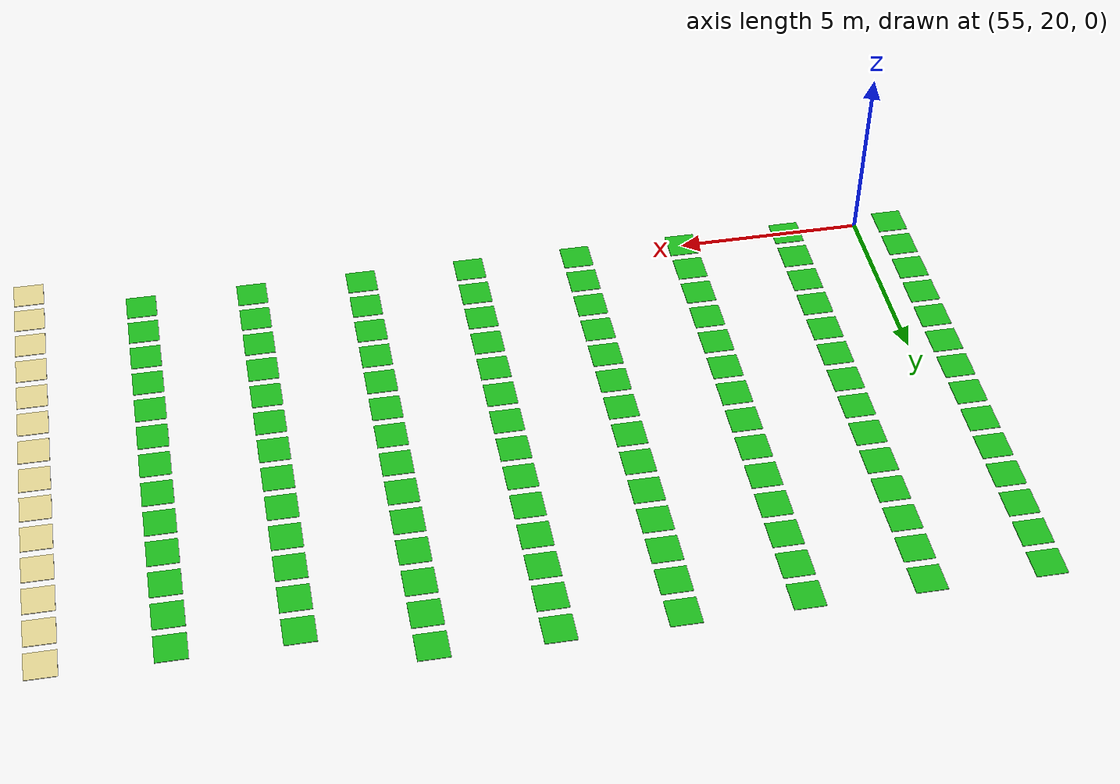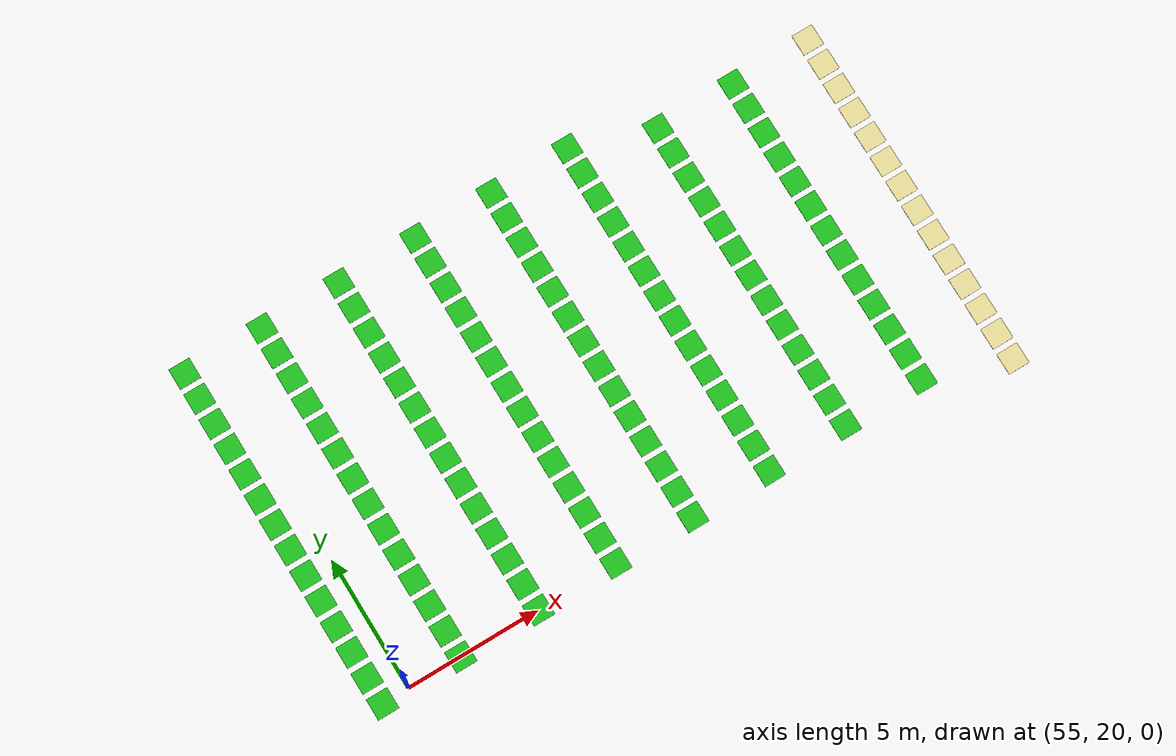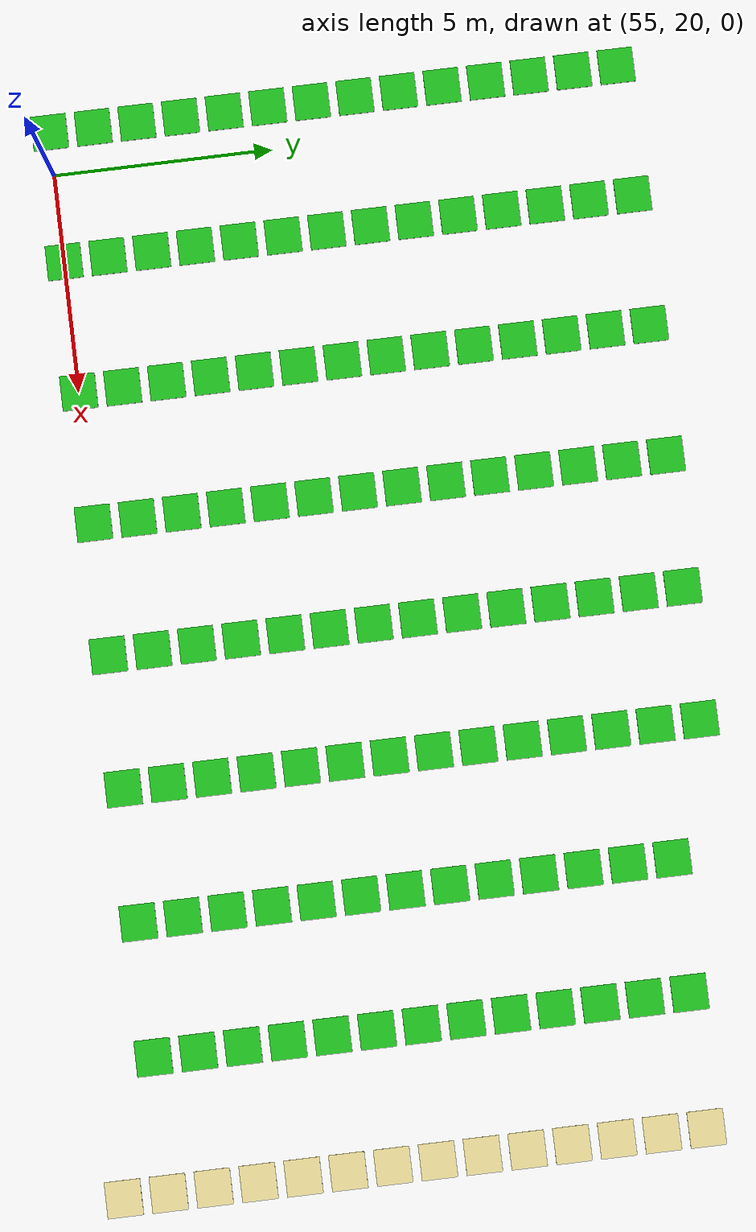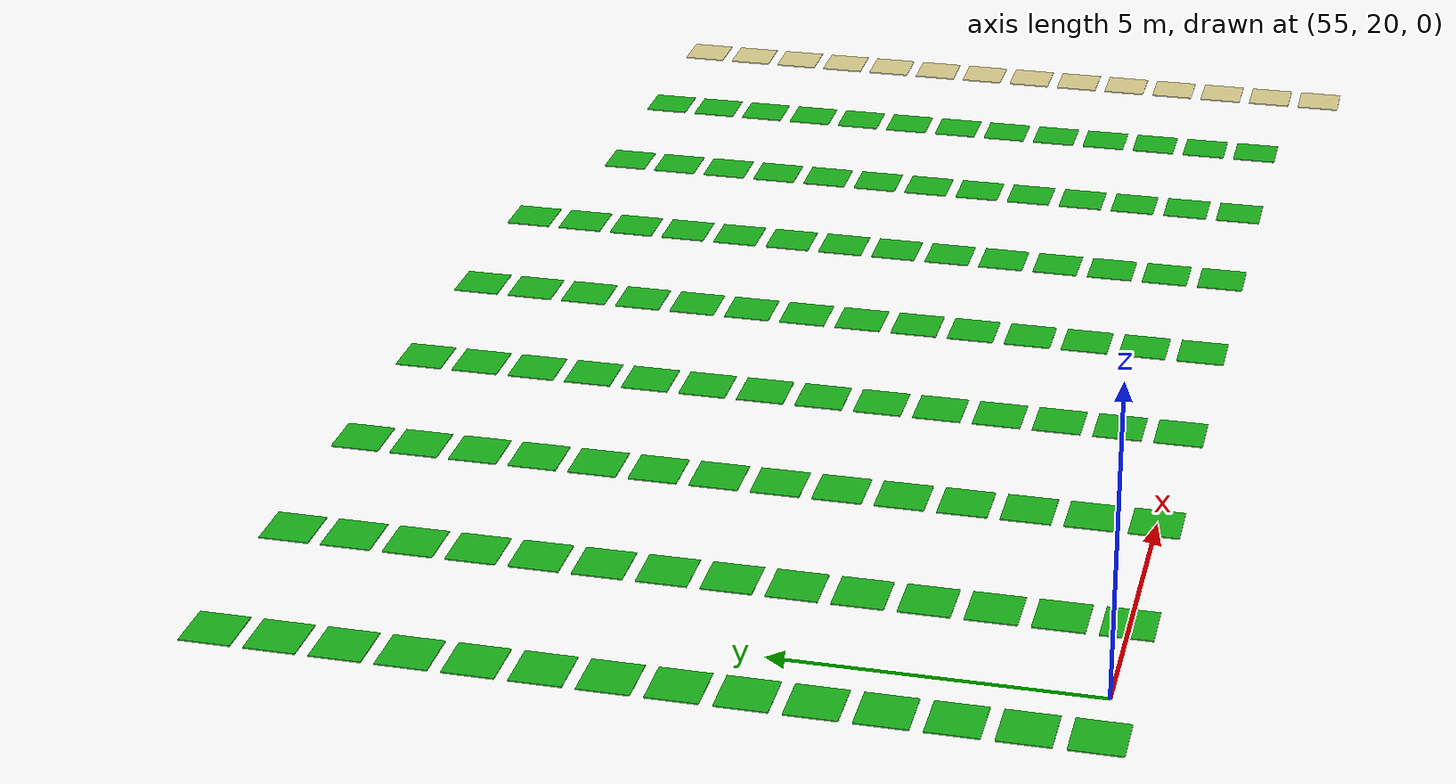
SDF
<sdf version="1.10">
 <world name="my_map">
  <model name="shelf_1518">
   <static>true</static>
   <pose>54.0
        33.0
        0.02
        0 0 0</pose>
   <link name="link">
    <visual name="visual">
     <geometry><box><size>0.8
                0.8
                0.02</size></box></geometry>
     <material><ambient>0.10 0.70 0.10 1</ambient><diffuse>0.10 0.70 0.10 1</diffuse></material>
    </visual>
   </link>
  </model>
  <model name="shelf_1519">
   <static>true</static>
   <pose>57.0
        33.0
        0.02
        0 0 0</pose>
   <link name="link">
    <visual name="visual">
     <geometry><box><size>0.8
                0.8
                0.02</size></box></geometry>
     <material><ambient>0.10 0.70 0.10 1</ambient><diffuse>0.10 0.70 0.10 1</diffuse></material>
    </visual>
   </link>
  </model>
  <model name="shelf_1520">
   <static>true</static>
   <pose>60.0
        33.0
        0.02
        0 0 0</pose>
   <link name="link">
    <visual name="visual">
     <geometry><box><size>0.8
                0.8
                0.02</size></box></geometry>
     <material><ambient>0.10 0.70 0.10 1</ambient><diffuse>0.10 0.70 0.10 1</diffuse></material>
    </visual>
   </link>
  </model>
  <model name="shelf_1521">
   <static>true</static>
   <pose>63.0
        33.0
        0.02
        0 0 0</pose>
   <link name="link">
    <visual name="visual">
     <geometry><box><size>0.8
                0.8
                0.02</size></box></geometry>
     <material><ambient>0.10 0.70 0.10 1</ambient><diffuse>0.10 0.70 0.10 1</diffuse></material>
    </visual>
   </link>
  </model>
  <model name="shelf_1522">
   <static>true</static>
   <pose>66.0
        33.0
        0.02
        0 0 0</pose>
   <link name="link">
    <visual name="visual">
     <geometry><box><size>0.8
                0.8
                0.02</size></box></geometry>
     <material><ambient>0.10 0.70 0.10 1</ambient><diffuse>0.10 0.70 0.10 1</diffuse></material>
    </visual>
   </link>
  </model>
  <model name="shelf_1523">
   <static>true</static>
   <pose>69.0
        33.0
        0.02
        0 0 0</pose>
   <link name="link">
    <visual name="visual">
     <geometry><box><size>0.8
                0.8
                0.02</size></box></geometry>
     <material><ambient>0.10 0.70 0.10 1</ambient><diffuse>0.10 0.70 0.10 1</diffuse></material>
    </visual>
   </link>
  </model>
  <model name="shelf_1543">
   <static>true</static>
   <pose>54.0
        32.0
        0.02
        0 0 0</pose>
   <link name="link">
    <visual name="visual">
     <geometry><box><size>0.8
                0.8
                0.02</size></box></geometry>
     <material><ambient>0.10 0.70 0.10 1</ambient><diffuse>0.10 0.70 0.10 1</diffuse></material>
    </visual>
   </link>
  </model>
  <model name="shelf_1544">
   <static>true</static>
   <pose>57.0
        32.0
        0.02
        0 0 0</pose>
   <link name="link">
    <visual name="visual">
     <geometry><box><size>0.8
                0.8
                0.02</size></box></geometry>
     <material><ambient>0.10 0.70 0.10 1</ambient><diffuse>0.10 0.70 0.10 1</diffuse></material>
    </visual>
   </link>
  </model>
  <model name="shelf_1545">
   <static>true</static>
   <pose>60.0
        32.0
        0.02
        0 0 0</pose>
   <link name="link">
    <visual name="visual">
     <geometry><box><size>0.8
                0.8
                0.02</size></box></geometry>
     <material><ambient>0.10 0.70 0.10 1</ambient><diffuse>0.10 0.70 0.10 1</diffuse></material>
    </visual>
   </link>
  </model>
  <model name="shelf_1546">
   <static>true</static>
   <pose>63.0
        32.0
        0.02
        0 0 0</pose>
   <link name="link">
    <visual name="visual">
     <geometry><box><size>0.8
                0.8
                0.02</size></box></geometry>
     <material><ambient>0.10 0.70 0.10 1</ambient><diffuse>0.10 0.70 0.10 1</diffuse></material>
    </visual>
   </link>
  </model>
  <model name="shelf_1547">
   <static>true</static>
   <pose>66.0
        32.0
        0.02
        0 0 0</pose>
   <link name="link">
    <visual name="visual">
     <geometry><box><size>0.8
                0.8
                0.02</size></box></geometry>
     <material><ambient>0.10 0.70 0.10 1</ambient><diffuse>0.10 0.70 0.10 1</diffuse></material>
    </visual>
   </link>
  </model>
  <model name="shelf_1548">
   <static>true</static>
   <pose>69.0
        32.0
        0.02
        0 0 0</pose>
   <link name="link">
    <visual name="visual">
     <geometry><box><size>0.8
                0.8
                0.02</size></box></geometry>
     <material><ambient>0.10 0.70 0.10 1</ambient><diffuse>0.10 0.70 0.10 1</diffuse></material>
    </visual>
   </link>
  </model>
  <model name="shelf_1549">
   <static>true</static>
   <pose>72.0
        32.0
        0.02
        0 0 0</pose>
   <link name="link">
    <visual name="visual">
     <geometry><box><size>0.8
                0.8
                0.02</size></box></geometry>
     <material><ambient>0.10 0.70 0.10 1</ambient><diffuse>0.10 0.70 0.10 1</diffuse></material>
    </visual>
   </link>
  </model>
  <model name="shelf_1550">
   <static>true</static>
   <pose>75.0
        32.0
        0.02
        0 0 0</pose>
   <link name="link">
    <visual name="visual">
     <geometry><box><size>0.8
                0.8
                0.02</size></box></geometry>
     <material><ambient>0.10 0.70 0.10 1</ambient><diffuse>0.10 0.70 0.10 1</diffuse></material>
    </visual>
   </link>
  </model>
  <model name="staging_140">
   <static>true</static>
   <pose>78.0
        32.0
        0.02
        0 0 0</pose>
   <link name="link">
    <visual name="visual">
     <geometry><box><size>0.8
                0.8
                0.02</size></box></geometry>
     <material><ambient>0.85 0.80 0.55 1</ambient><diffuse>0.85 0.80 0.55 1</diffuse></material>
    </visual>
   </link>
  </model>
  <model name="shelf_1568">
   <static>true</static>
   <pose>54.0
        31.0
        0.02
        0 0 0</pose>
   <link name="link">
    <visual name="visual">
     <geometry><box><size>0.8
                0.8
                0.02</size></box></geometry>
     <material><ambient>0.10 0.70 0.10 1</ambient><diffuse>0.10 0.70 0.10 1</diffuse></material>
    </visual>
   </link>
  </model>
  <model name="shelf_1569">
   <static>true</static>
   <pose>57.0
        31.0
        0.02
        0 0 0</pose>
   <link name="link">
    <visual name="visual">
     <geometry><box><size>0.8
                0.8
                0.02</size></box></geometry>
     <material><ambient>0.10 0.70 0.10 1</ambient><diffuse>0.10 0.70 0.10 1</diffuse></material>
    </visual>
   </link>
  </model>
  <model name="shelf_1570">
   <static>true</static>
   <pose>60.0
        31.0
        0.02
        0 0 0</pose>
   <link name="link">
    <visual name="visual">
     <geometry><box><size>0.8
                0.8
                0.02</size></box></geometry>
     <material><ambient>0.10 0.70 0.10 1</ambient><diffuse>0.10 0.70 0.10 1</diffuse></material>
    </visual>
   </link>
  </model>
  <model name="shelf_1571">
   <static>true</static>
   <pose>63.0
        31.0
        0.02
        0 0 0</pose>
   <link name="link">
    <visual name="visual">
     <geometry><box><size>0.8
                0.8
                0.02</size></box></geometry>
     <material><ambient>0.10 0.70 0.10 1</ambient><diffuse>0.10 0.70 0.10 1</diffuse></material>
    </visual>
   </link>
  </model>
  <model name="shelf_1572">
   <static>true</static>
   <pose>66.0
        31.0
        0.02
        0 0 0</pose>
   <link name="link">
    <visual name="visual">
     <geometry><box><size>0.8
                0.8
                0.02</size></box></geometry>
     <material><ambient>0.10 0.70 0.10 1</ambient><diffuse>0.10 0.70 0.10 1</diffuse></material>
    </visual>
   </link>
  </model>
  <model name="shelf_1573">
   <static>true</static>
   <pose>69.0
        31.0
        0.02
        0 0 0</pose>
   <link name="link">
    <visual name="visual">
     <geometry><box><size>0.8
                0.8
                0.02</size></box></geometry>
     <material><ambient>0.10 0.70 0.10 1</ambient><diffuse>0.10 0.70 0.10 1</diffuse></material>
    </visual>
   </link>
  </model>
  <model name="shelf_1574">
   <static>true</static>
   <pose>72.0
        31.0
        0.02
        0 0 0</pose>
   <link name="link">
    <visual name="visual">
     <geometry><box><size>0.8
                0.8
                0.02</size></box></geometry>
     <material><ambient>0.10 0.70 0.10 1</ambient><diffuse>0.10 0.70 0.10 1</diffuse></material>
    </visual>
   </link>
  </model>
  <model name="shelf_1575">
   <static>true</static>
   <pose>75.0
        31.0
        0.02
        0 0 0</pose>
   <link name="link">
    <visual name="visual">
     <geometry><box><size>0.8
                0.8
                0.02</size></box></geometry>
     <material><ambient>0.10 0.70 0.10 1</ambient><diffuse>0.10 0.70 0.10 1</diffuse></material>
    </visual>
   </link>
  </model>
  <model name="staging_142">
   <static>true</static>
   <pose>78.0
        31.0
        0.02
        0 0 0</pose>
   <link name="link">
    <visual name="visual">
     <geometry><box><size>0.8
                0.8
                0.02</size></box></geometry>
     <material><ambient>0.85 0.80 0.55 1</ambient><diffuse>0.85 0.80 0.55 1</diffuse></material>
    </visual>
   </link>
  </model>
  <model name="shelf_1593">
   <static>true</static>
   <pose>54.0
        30.0
        0.02
        0 0 0</pose>
   <link name="link">
    <visual name="visual">
     <geometry><box><size>0.8
                0.8
                0.02</size></box></geometry>
     <material><ambient>0.10 0.70 0.10 1</ambient><diffuse>0.10 0.70 0.10 1</diffuse></material>
    </visual>
   </link>
  </model>
  <model name="shelf_1594">
   <static>true</static>
   <pose>57.0
        30.0
        0.02
        0 0 0</pose>
   <link name="link">
    <visual name="visual">
     <geometry><box><size>0.8
                0.8
                0.02</size></box></geometry>
     <material><ambient>0.10 0.70 0.10 1</ambient><diffuse>0.10 0.70 0.10 1</diffuse></material>
    </visual>
   </link>
  </model>
  <model name="shelf_1595">
   <static>true</static>
   <pose>60.0
        30.0
        0.02
        0 0 0</pose>
   <link name="link">
    <visual name="visual">
     <geometry><box><size>0.8
                0.8
                0.02</size></box></geometry>
     <material><ambient>0.10 0.70 0.10 1</ambient><diffuse>0.10 0.70 0.10 1</diffuse></material>
    </visual>
   </link>
  </model>
  <model name="shelf_1596">
   <static>true</static>
   <pose>63.0
        30.0
        0.02
        0 0 0</pose>
   <link name="link">
    <visual name="visual">
     <geometry><box><size>0.8
                0.8
                0.02</size></box></geometry>
     <material><ambient>0.10 0.70 0.10 1</ambient><diffuse>0.10 0.70 0.10 1</diffuse></material>
    </visual>
   </link>
  </model>
  <model name="shelf_1597">
   <static>true</static>
   <pose>66.0
        30.0
        0.02
        0 0 0</pose>
   <link name="link">
    <visual name="visual">
     <geometry><box><size>0.8
                0.8
                0.02</size></box></geometry>
     <material><ambient>0.10 0.70 0.10 1</ambient><diffuse>0.10 0.70 0.10 1</diffuse></material>
    </visual>
   </link>
  </model>
  <model name="shelf_1598">
   <static>true</static>
   <pose>69.0
        30.0
        0.02
        0 0 0</pose>
   <link name="link">
    <visual name="visual">
     <geometry><box><size>0.8
                0.8
                0.02</size></box></geometry>
     <material><ambient>0.10 0.70 0.10 1</ambient><diffuse>0.10 0.70 0.10 1</diffuse></material>
    </visual>
   </link>
  </model>
  <model name="shelf_1599">
   <static>true</static>
   <pose>72.0
        30.0
        0.02
        0 0 0</pose>
   <link name="link">
    <visual name="visual">
     <geometry><box><size>0.8
                0.8
                0.02</size></box></geometry>
     <material><ambient>0.10 0.70 0.10 1</ambient><diffuse>0.10 0.70 0.10 1</diffuse></material>
    </visual>
   </link>
  </model>
  <model name="shelf_1600">
   <static>true</static>
   <pose>75.0
        30.0
        0.02
        0 0 0</pose>
   <link name="link">
    <visual name="visual">
     <geometry><box><size>0.8
                0.8
                0.02</size></box></geometry>
     <material><ambient>0.10 0.70 0.10 1</ambient><diffuse>0.10 0.70 0.10 1</diffuse></material>
    </visual>
   </link>
  </model>
  <model name="staging_144">
   <static>true</static>
   <pose>78.0
        30.0
        0.02
        0 0 0</pose>
   <link name="link">
    <visual name="visual">
     <geometry><box><size>0.8
                0.8
                0.02</size></box></geometry>
     <material><ambient>0.85 0.80 0.55 1</ambient><diffuse>0.85 0.80 0.55 1</diffuse></material>
    </visual>
   </link>
  </model>
  <model name="shelf_1618">
   <static>true</static>
   <pose>54.0
        29.0
        0.02
        0 0 0</pose>
   <link name="link">
    <visual name="visual">
     <geometry><box><size>0.8
                0.8
                0.02</size></box></geometry>
     <material><ambient>0.10 0.70 0.10 1</ambient><diffuse>0.10 0.70 0.10 1</diffuse></material>
    </visual>
   </link>
  </model>
  <model name="shelf_1619">
   <static>true</static>
   <pose>57.0
        29.0
        0.02
        0 0 0</pose>
   <link name="link">
    <visual name="visual">
     <geometry><box><size>0.8
                0.8
                0.02</size></box></geometry>
     <material><ambient>0.10 0.70 0.10 1</ambient><diffuse>0.10 0.70 0.10 1</diffuse></material>
    </visual>
   </link>
  </model>
  <model name="shelf_1620">
   <static>true</static>
   <pose>60.0
        29.0
        0.02
        0 0 0</pose>
   <link name="link">
    <visual name="visual">
     <geometry><box><size>0.8
                0.8
                0.02</size></box></geometry>
     <material><ambient>0.10 0.70 0.10 1</ambient><diffuse>0.10 0.70 0.10 1</diffuse></material>
    </visual>
   </link>
  </model>
  <model name="shelf_1621">
   <static>true</static>
   <pose>63.0
        29.0
        0.02
        0 0 0</pose>
   <link name="link">
    <visual name="visual">
     <geometry><box><size>0.8
                0.8
                0.02</size></box></geometry>
     <material><ambient>0.10 0.70 0.10 1</ambient><diffuse>0.10 0.70 0.10 1</diffuse></material>
    </visual>
   </link>
  </model>
  <model name="shelf_1622">
   <static>true</static>
   <pose>66.0
        29.0
        0.02
        0 0 0</pose>
   <link name="link">
    <visual name="visual">
     <geometry><box><size>0.8
                0.8
                0.02</size></box></geometry>
     <material><ambient>0.10 0.70 0.10 1</ambient><diffuse>0.10 0.70 0.10 1</diffuse></material>
    </visual>
   </link>
  </model>
  <model name="shelf_1623">
   <static>true</static>
   <pose>69.0
        29.0
        0.02
        0 0 0</pose>
   <link name="link">
    <visual name="visual">
     <geometry><box><size>0.8
                0.8
                0.02</size></box></geometry>
     <material><ambient>0.10 0.70 0.10 1</ambient><diffuse>0.10 0.70 0.10 1</diffuse></material>
    </visual>
   </link>
  </model>
  <model name="shelf_1624">
   <static>true</static>
   <pose>72.0
        29.0
        0.02
        0 0 0</pose>
   <link name="link">
    <visual name="visual">
     <geometry><box><size>0.8
                0.8
                0.02</size></box></geometry>
     <material><ambient>0.10 0.70 0.10 1</ambient><diffuse>0.10 0.70 0.10 1</diffuse></material>
    </visual>
   </link>
  </model>
  <model name="shelf_1625">
   <static>true</static>
   <pose>75.0
        29.0
        0.02
        0 0 0</pose>
   <link name="link">
    <visual name="visual">
     <geometry><box><size>0.8
                0.8
                0.02</size></box></geometry>
     <material><ambient>0.10 0.70 0.10 1</ambient><diffuse>0.10 0.70 0.10 1</diffuse></material>
    </visual>
   </link>
  </model>
  <model name="staging_146">
   <static>true</static>
   <pose>78.0
        29.0
        0.02
        0 0 0</pose>
   <link name="link">
    <visual name="visual">
     <geometry><box><size>0.8
                0.8
                0.02</size></box></geometry>
     <material><ambient>0.85 0.80 0.55 1</ambient><diffuse>0.85 0.80 0.55 1</diffuse></material>
    </visual>
   </link>
  </model>
  <model name="shelf_1643">
   <static>true</static>
   <pose>54.0
        28.0
        0.02
        0 0 0</pose>
   <link name="link">
    <visual name="visual">
     <geometry><box><size>0.8
                0.8
                0.02</size></box></geometry>
     <material><ambient>0.10 0.70 0.10 1</ambient><diffuse>0.10 0.70 0.10 1</diffuse></material>
    </visual>
   </link>
  </model>
  <model name="shelf_1644">
   <static>true</static>
   <pose>57.0
        28.0
        0.02
        0 0 0</pose>
   <link name="link">
    <visual name="visual">
     <geometry><box><size>0.8
                0.8
                0.02</size></box></geometry>
     <material><ambient>0.10 0.70 0.10 1</ambient><diffuse>0.10 0.70 0.10 1</diffuse></material>
    </visual>
   </link>
  </model>
  <model name="shelf_1645">
   <static>true</static>
   <pose>60.0
        28.0
        0.02
        0 0 0</pose>
   <link name="link">
    <visual name="visual">
     <geometry><box><size>0.8
                0.8
                0.02</size></box></geometry>
     <material><ambient>0.10 0.70 0.10 1</ambient><diffuse>0.10 0.70 0.10 1</diffuse></material>
    </visual>
   </link>
  </model>
  <model name="shelf_1646">
   <static>true</static>
   <pose>63.0
        28.0
        0.02
        0 0 0</pose>
   <link name="link">
    <visual name="visual">
     <geometry><box><size>0.8
                0.8
                0.02</size></box></geometry>
     <material><ambient>0.10 0.70 0.10 1</ambient><diffuse>0.10 0.70 0.10 1</diffuse></material>
    </visual>
   </link>
  </model>
  <model name="shelf_1647">
   <static>true</static>
   <pose>66.0
        28.0
        0.02
        0 0 0</pose>
   <link name="link">
    <visual name="visual">
     <geometry><box><size>0.8
                0.8
                0.02</size></box></geometry>
     <material><ambient>0.10 0.70 0.10 1</ambient><diffuse>0.10 0.70 0.10 1</diffuse></material>
    </visual>
   </link>
  </model>
  <model name="shelf_1648">
   <static>true</static>
   <pose>69.0
        28.0
        0.02
        0 0 0</pose>
   <link name="link">
    <visual name="visual">
     <geometry><box><size>0.8
                0.8
                0.02</size></box></geometry>
     <material><ambient>0.10 0.70 0.10 1</ambient><diffuse>0.10 0.70 0.10 1</diffuse></material>
    </visual>
   </link>
  </model>
  <model name="shelf_1649">
   <static>true</static>
   <pose>72.0
        28.0
        0.02
        0 0 0</pose>
   <link name="link">
    <visual name="visual">
     <geometry><box><size>0.8
                0.8
                0.02</size></box></geometry>
     <material><ambient>0.10 0.70 0.10 1</ambient><diffuse>0.10 0.70 0.10 1</diffuse></material>
    </visual>
   </link>
  </model>
  <model name="shelf_1650">
   <static>true</static>
   <pose>75.0
        28.0
        0.02
        0 0 0</pose>
   <link name="link">
    <visual name="visual">
     <geometry><box><size>0.8
                0.8
                0.02</size></box></geometry>
     <material><ambient>0.10 0.70 0.10 1</ambient><diffuse>0.10 0.70 0.10 1</diffuse></material>
    </visual>
   </link>
  </model>
  <model name="staging_148">
   <static>true</static>
   <pose>78.0
        28.0
        0.02
        0 0 0</pose>
   <link name="link">
    <visual name="visual">
     <geometry><box><size>0.8
                0.8
                0.02</size></box></geometry>
     <material><ambient>0.85 0.80 0.55 1</ambient><diffuse>0.85 0.80 0.55 1</diffuse></material>
    </visual>
   </link>
  </model>
  <model name="shelf_1668">
   <static>true</static>
   <pose>54.0
        27.0
        0.02
        0 0 0</pose>
   <link name="link">
    <visual name="visual">
     <geometry><box><size>0.8
                0.8
                0.02</size></box></geometry>
     <material><ambient>0.10 0.70 0.10 1</ambient><diffuse>0.10 0.70 0.10 1</diffuse></material>
    </visual>
   </link>
  </model>
  <model name="shelf_1669">
   <static>true</static>
   <pose>57.0
        27.0
        0.02
        0 0 0</pose>
   <link name="link">
    <visual name="visual">
     <geometry><box><size>0.8
                0.8
                0.02</size></box></geometry>
     <material><ambient>0.10 0.70 0.10 1</ambient><diffuse>0.10 0.70 0.10 1</diffuse></material>
    </visual>
   </link>
  </model>
  <model name="shelf_1670">
   <static>true</static>
   <pose>60.0
        27.0
        0.02
        0 0 0</pose>
   <link name="link">
    <visual name="visual">
     <geometry><box><size>0.8
                0.8
                0.02</size></box></geometry>
     <material><ambient>0.10 0.70 0.10 1</ambient><diffuse>0.10 0.70 0.10 1</diffuse></material>
    </visual>
   </link>
  </model>
  <model name="shelf_1671">
   <static>true</static>
   <pose>63.0
        27.0
        0.02
        0 0 0</pose>
   <link name="link">
    <visual name="visual">
     <geometry><box><size>0.8
                0.8
                0.02</size></box></geometry>
     <material><ambient>0.10 0.70 0.10 1</ambient><diffuse>0.10 0.70 0.10 1</diffuse></material>
    </visual>
   </link>
  </model>
  <model name="shelf_1672">
   <static>true</static>
   <pose>66.0
        27.0
        0.02
        0 0 0</pose>
   <link name="link">
    <visual name="visual">
     <geometry><box><size>0.8
                0.8
                0.02</size></box></geometry>
     <material><ambient>0.10 0.70 0.10 1</ambient><diffuse>0.10 0.70 0.10 1</diffuse></material>
    </visual>
   </link>
  </model>
  <model name="shelf_1673">
   <static>true</static>
   <pose>69.0
        27.0
        0.02
        0 0 0</pose>
   <link name="link">
    <visual name="visual">
     <geometry><box><size>0.8
                0.8
                0.02</size></box></geometry>
     <material><ambient>0.10 0.70 0.10 1</ambient><diffuse>0.10 0.70 0.10 1</diffuse></material>
    </visual>
   </link>
  </model>
  <model name="shelf_1674">
   <static>true</static>
   <pose>72.0
        27.0
        0.02
        0 0 0</pose>
   <link name="link">
    <visual name="visual">
     <geometry><box><size>0.8
                0.8
                0.02</size></box></geometry>
     <material><ambient>0.10 0.70 0.10 1</ambient><diffuse>0.10 0.70 0.10 1</diffuse></material>
    </visual>
   </link>
  </model>
  <model name="shelf_1675">
   <static>true</static>
   <pose>75.0
        27.0
        0.02
        0 0 0</pose>
   <link name="link">
    <visual name="visual">
     <geometry><box><size>0.8
                0.8
                0.02</size></box></geometry>
     <material><ambient>0.10 0.70 0.10 1</ambient><diffuse>0.10 0.70 0.10 1</diffuse></material>
    </visual>
   </link>
  </model>
  <model name="staging_150">
   <static>true</static>
   <pose>78.0
        27.0
        0.02
        0 0 0</pose>
   <link name="link">
    <visual name="visual">
     <geometry><box><size>0.8
                0.8
                0.02</size></box></geometry>
     <material><ambient>0.85 0.80 0.55 1</ambient><diffuse>0.85 0.80 0.55 1</diffuse></material>
    </visual>
   </link>
  </model>
  <model name="shelf_1693">
   <static>true</static>
   <pose>54.0
        26.0
        0.02
        0 0 0</pose>
   <link name="link">
    <visual name="visual">
     <geometry><box><size>0.8
                0.8
                0.02</size></box></geometry>
     <material><ambient>0.10 0.70 0.10 1</ambient><diffuse>0.10 0.70 0.10 1</diffuse></material>
    </visual>
   </link>
  </model>
  <model name="shelf_1694">
   <static>true</static>
   <pose>57.0
        26.0
        0.02
        0 0 0</pose>
   <link name="link">
    <visual name="visual">
     <geometry><box><size>0.8
                0.8
                0.02</size></box></geometry>
     <material><ambient>0.10 0.70 0.10 1</ambient><diffuse>0.10 0.70 0.10 1</diffuse></material>
    </visual>
   </link>
  </model>
  <model name="shelf_1695">
   <static>true</static>
   <pose>60.0
        26.0
        0.02
        0 0 0</pose>
   <link name="link">
    <visual name="visual">
     <geometry><box><size>0.8
                0.8
                0.02</size></box></geometry>
     <material><ambient>0.10 0.70 0.10 1</ambient><diffuse>0.10 0.70 0.10 1</diffuse></material>
    </visual>
   </link>
  </model>
  <model name="shelf_1696">
   <static>true</static>
   <pose>63.0
        26.0
        0.02
        0 0 0</pose>
   <link name="link">
    <visual name="visual">
     <geometry><box><size>0.8
                0.8
                0.02</size></box></geometry>
     <material><ambient>0.10 0.70 0.10 1</ambient><diffuse>0.10 0.70 0.10 1</diffuse></material>
    </visual>
   </link>
  </model>
  <model name="shelf_1697">
   <static>true</static>
   <pose>66.0
        26.0
        0.02
        0 0 0</pose>
   <link name="link">
    <visual name="visual">
     <geometry><box><size>0.8
                0.8
                0.02</size></box></geometry>
     <material><ambient>0.10 0.70 0.10 1</ambient><diffuse>0.10 0.70 0.10 1</diffuse></material>
    </visual>
   </link>
  </model>
  <model name="shelf_1698">
   <static>true</static>
   <pose>69.0
        26.0
        0.02
        0 0 0</pose>
   <link name="link">
    <visual name="visual">
     <geometry><box><size>0.8
                0.8
                0.02</size></box></geometry>
     <material><ambient>0.10 0.70 0.10 1</ambient><diffuse>0.10 0.70 0.10 1</diffuse></material>
    </visual>
   </link>
  </model>
  <model name="shelf_1699">
   <static>true</static>
   <pose>72.0
        26.0
        0.02
        0 0 0</pose>
   <link name="link">
    <visual name="visual">
     <geometry><box><size>0.8
                0.8
                0.02</size></box></geometry>
     <material><ambient>0.10 0.70 0.10 1</ambient><diffuse>0.10 0.70 0.10 1</diffuse></material>
    </visual>
   </link>
  </model>
  <model name="shelf_1700">
   <static>true</static>
   <pose>75.0
        26.0
        0.02
        0 0 0</pose>
   <link name="link">
    <visual name="visual">
     <geometry><box><size>0.8
                0.8
                0.02</size></box></geometry>
     <material><ambient>0.10 0.70 0.10 1</ambient><diffuse>0.10 0.70 0.10 1</diffuse></material>
    </visual>
   </link>
  </model>
  <model name="staging_152">
   <static>true</static>
   <pose>78.0
        26.0
        0.02
        0 0 0</pose>
   <link name="link">
    <visual name="visual">
     <geometry><box><size>0.8
                0.8
                0.02</size></box></geometry>
     <material><ambient>0.85 0.80 0.55 1</ambient><diffuse>0.85 0.80 0.55 1</diffuse></material>
    </visual>
   </link>
  </model>
  <model name="shelf_1718">
   <static>true</static>
   <pose>54.0
        25.0
        0.02
        0 0 0</pose>
   <link name="link">
    <visual name="visual">
     <geometry><box><size>0.8
                0.8
                0.02</size></box></geometry>
     <material><ambient>0.10 0.70 0.10 1</ambient><diffuse>0.10 0.70 0.10 1</diffuse></material>
    </visual>
   </link>
  </model>
  <model name="shelf_1719">
   <static>true</static>
   <pose>57.0
        25.0
        0.02
        0 0 0</pose>
   <link name="link">
    <visual name="visual">
     <geometry><box><size>0.8
                0.8
                0.02</size></box></geometry>
     <material><ambient>0.10 0.70 0.10 1</ambient><diffuse>0.10 0.70 0.10 1</diffuse></material>
    </visual>
   </link>
  </model>
  <model name="shelf_1720">
   <static>true</static>
   <pose>60.0
        25.0
        0.02
        0 0 0</pose>
   <link name="link">
    <visual name="visual">
     <geometry><box><size>0.8
                0.8
                0.02</size></box></geometry>
     <material><ambient>0.10 0.70 0.10 1</ambient><diffuse>0.10 0.70 0.10 1</diffuse></material>
    </visual>
   </link>
  </model>
  <model name="shelf_1721">
   <static>true</static>
   <pose>63.0
        25.0
        0.02
        0 0 0</pose>
   <link name="link">
    <visual name="visual">
     <geometry><box><size>0.8
                0.8
                0.02</size></box></geometry>
     <material><ambient>0.10 0.70 0.10 1</ambient><diffuse>0.10 0.70 0.10 1</diffuse></material>
    </visual>
   </link>
  </model>
  <model name="shelf_1722">
   <static>true</static>
   <pose>66.0
        25.0
        0.02
        0 0 0</pose>
   <link name="link">
    <visual name="visual">
     <geometry><box><size>0.8
                0.8
                0.02</size></box></geometry>
     <material><ambient>0.10 0.70 0.10 1</ambient><diffuse>0.10 0.70 0.10 1</diffuse></material>
    </visual>
   </link>
  </model>
  <model name="shelf_1723">
   <static>true</static>
   <pose>69.0
        25.0
        0.02
        0 0 0</pose>
   <link name="link">
    <visual name="visual">
     <geometry><box><size>0.8
                0.8
                0.02</size></box></geometry>
     <material><ambient>0.10 0.70 0.10 1</ambient><diffuse>0.10 0.70 0.10 1</diffuse></material>
    </visual>
   </link>
  </model>
  <model name="shelf_1724">
   <static>true</static>
   <pose>72.0
        25.0
        0.02
        0 0 0</pose>
   <link name="link">
    <visual name="visual">
     <geometry><box><size>0.8
                0.8
                0.02</size></box></geometry>
     <material><ambient>0.10 0.70 0.10 1</ambient><diffuse>0.10 0.70 0.10 1</diffuse></material>
    </visual>
   </link>
  </model>
  <model name="shelf_1725">
   <static>true</static>
   <pose>75.0
        25.0
        0.02
        0 0 0</pose>
   <link name="link">
    <visual name="visual">
     <geometry><box><size>0.8
                0.8
                0.02</size></box></geometry>
     <material><ambient>0.10 0.70 0.10 1</ambient><diffuse>0.10 0.70 0.10 1</diffuse></material>
    </visual>
   </link>
  </model>
  <model name="staging_154">
   <static>true</static>
   <pose>78.0
        25.0
        0.02
        0 0 0</pose>
   <link name="link">
    <visual name="visual">
     <geometry><box><size>0.8
                0.8
                0.02</size></box></geometry>
     <material><ambient>0.85 0.80 0.55 1</ambient><diffuse>0.85 0.80 0.55 1</diffuse></material>
    </visual>
   </link>
  </model>
  <model name="shelf_1743">
   <static>true</static>
   <pose>54.0
        24.0
        0.02
        0 0 0</pose>
   <link name="link">
    <visual name="visual">
     <geometry><box><size>0.8
                0.8
                0.02</size></box></geometry>
     <material><ambient>0.10 0.70 0.10 1</ambient><diffuse>0.10 0.70 0.10 1</diffuse></material>
    </visual>
   </link>
  </model>
  <model name="shelf_1744">
   <static>true</static>
   <pose>57.0
        24.0
        0.02
        0 0 0</pose>
   <link name="link">
    <visual name="visual">
     <geometry><box><size>0.8
                0.8
                0.02</size></box></geometry>
     <material><ambient>0.10 0.70 0.10 1</ambient><diffuse>0.10 0.70 0.10 1</diffuse></material>
    </visual>
   </link>
  </model>
  <model name="shelf_1745">
   <static>true</static>
   <pose>60.0
        24.0
        0.02
        0 0 0</pose>
   <link name="link">
    <visual name="visual">
     <geometry><box><size>0.8
                0.8
                0.02</size></box></geometry>
     <material><ambient>0.10 0.70 0.10 1</ambient><diffuse>0.10 0.70 0.10 1</diffuse></material>
    </visual>
   </link>
  </model>
  <model name="shelf_1746">
   <static>true</static>
   <pose>63.0
        24.0
        0.02
        0 0 0</pose>
   <link name="link">
    <visual name="visual">
     <geometry><box><size>0.8
                0.8
                0.02</size></box></geometry>
     <material><ambient>0.10 0.70 0.10 1</ambient><diffuse>0.10 0.70 0.10 1</diffuse></material>
    </visual>
   </link>
  </model>
  <model name="shelf_1747">
   <static>true</static>
   <pose>66.0
        24.0
        0.02
        0 0 0</pose>
   <link name="link">
    <visual name="visual">
     <geometry><box><size>0.8
                0.8
                0.02</size></box></geometry>
     <material><ambient>0.10 0.70 0.10 1</ambient><diffuse>0.10 0.70 0.10 1</diffuse></material>
    </visual>
   </link>
  </model>
  <model name="shelf_1748">
   <static>true</static>
   <pose>69.0
        24.0
        0.02
        0 0 0</pose>
   <link name="link">
    <visual name="visual">
     <geometry><box><size>0.8
                0.8
                0.02</size></box></geometry>
     <material><ambient>0.10 0.70 0.10 1</ambient><diffuse>0.10 0.70 0.10 1</diffuse></material>
    </visual>
   </link>
  </model>
  <model name="shelf_1749">
   <static>true</static>
   <pose>72.0
        24.0
        0.02
        0 0 0</pose>
   <link name="link">
    <visual name="visual">
     <geometry><box><size>0.8
                0.8
                0.02</size></box></geometry>
     <material><ambient>0.10 0.70 0.10 1</ambient><diffuse>0.10 0.70 0.10 1</diffuse></material>
    </visual>
   </link>
  </model>
  <model name="shelf_1750">
   <static>true</static>
   <pose>75.0
        24.0
        0.02
        0 0 0</pose>
   <link name="link">
    <visual name="visual">
     <geometry><box><size>0.8
                0.8
                0.02</size></box></geometry>
     <material><ambient>0.10 0.70 0.10 1</ambient><diffuse>0.10 0.70 0.10 1</diffuse></material>
    </visual>
   </link>
  </model>
  <model name="staging_156">
   <static>true</static>
   <pose>78.0
        24.0
        0.02
        0 0 0</pose>
   <link name="link">
    <visual name="visual">
     <geometry><box><size>0.8
                0.8
                0.02</size></box></geometry>
     <material><ambient>0.85 0.80 0.55 1</ambient><diffuse>0.85 0.80 0.55 1</diffuse></material>
    </visual>
   </link>
  </model>
  <model name="shelf_1768">
   <static>true</static>
   <pose>54.0
        23.0
        0.02
        0 0 0</pose>
   <link name="link">
    <visual name="visual">
     <geometry><box><size>0.8
                0.8
                0.02</size></box></geometry>
     <material><ambient>0.10 0.70 0.10 1</ambient><diffuse>0.10 0.70 0.10 1</diffuse></material>
    </visual>
   </link>
  </model>
  <model name="shelf_1769">
   <static>true</static>
   <pose>57.0
        23.0
        0.02
        0 0 0</pose>
   <link name="link">
    <visual name="visual">
     <geometry><box><size>0.8
                0.8
                0.02</size></box></geometry>
     <material><ambient>0.10 0.70 0.10 1</ambient><diffuse>0.10 0.70 0.10 1</diffuse></material>
    </visual>
   </link>
  </model>
  <model name="shelf_1770">
   <static>true</static>
   <pose>60.0
        23.0
        0.02
        0 0 0</pose>
   <link name="link">
    <visual name="visual">
     <geometry><box><size>0.8
                0.8
                0.02</size></box></geometry>
     <material><ambient>0.10 0.70 0.10 1</ambient><diffuse>0.10 0.70 0.10 1</diffuse></material>
    </visual>
   </link>
  </model>
  <model name="shelf_1771">
   <static>true</static>
   <pose>63.0
        23.0
        0.02
        0 0 0</pose>
   <link name="link">
    <visual name="visual">
     <geometry><box><size>0.8
                0.8
                0.02</size></box></geometry>
     <material><ambient>0.10 0.70 0.10 1</ambient><diffuse>0.10 0.70 0.10 1</diffuse></material>
    </visual>
   </link>
  </model>
  <model name="shelf_1772">
   <static>true</static>
   <pose>66.0
        23.0
        0.02
        0 0 0</pose>
   <link name="link">
    <visual name="visual">
     <geometry><box><size>0.8
                0.8
                0.02</size></box></geometry>
     <material><ambient>0.10 0.70 0.10 1</ambient><diffuse>0.10 0.70 0.10 1</diffuse></material>
    </visual>
   </link>
  </model>
  <model name="shelf_1773">
   <static>true</static>
   <pose>69.0
        23.0
        0.02
        0 0 0</pose>
   <link name="link">
    <visual name="visual">
     <geometry><box><size>0.8
                0.8
                0.02</size></box></geometry>
     <material><ambient>0.10 0.70 0.10 1</ambient><diffuse>0.10 0.70 0.10 1</diffuse></material>
    </visual>
   </link>
  </model>
  <model name="shelf_1774">
   <static>true</static>
   <pose>72.0
        23.0
        0.02
        0 0 0</pose>
   <link name="link">
    <visual name="visual">
     <geometry><box><size>0.8
                0.8
                0.02</size></box></geometry>
     <material><ambient>0.10 0.70 0.10 1</ambient><diffuse>0.10 0.70 0.10 1</diffuse></material>
    </visual>
   </link>
  </model>
  <model name="shelf_1775">
   <static>true</static>
   <pose>75.0
        23.0
        0.02
        0 0 0</pose>
   <link name="link">
    <visual name="visual">
     <geometry><box><size>0.8
                0.8
                0.02</size></box></geometry>
     <material><ambient>0.10 0.70 0.10 1</ambient><diffuse>0.10 0.70 0.10 1</diffuse></material>
    </visual>
   </link>
  </model>
  <model name="staging_158">
   <static>true</static>
   <pose>78.0
        23.0
        0.02
        0 0 0</pose>
   <link name="link">
    <visual name="visual">
     <geometry><box><size>0.8
                0.8
                0.02</size></box></geometry>
     <material><ambient>0.85 0.80 0.55 1</ambient><diffuse>0.85 0.80 0.55 1</diffuse></material>
    </visual>
   </link>
  </model>
  <model name="shelf_1793">
   <static>true</static>
   <pose>54.0
        22.0
        0.02
        0 0 0</pose>
   <link name="link">
    <visual name="visual">
     <geometry><box><size>0.8
                0.8
                0.02</size></box></geometry>
     <material><ambient>0.10 0.70 0.10 1</ambient><diffuse>0.10 0.70 0.10 1</diffuse></material>
    </visual>
   </link>
  </model>
  <model name="shelf_1794">
   <static>true</static>
   <pose>57.0
        22.0
        0.02
        0 0 0</pose>
   <link name="link">
    <visual name="visual">
     <geometry><box><size>0.8
                0.8
                0.02</size></box></geometry>
     <material><ambient>0.10 0.70 0.10 1</ambient><diffuse>0.10 0.70 0.10 1</diffuse></material>
    </visual>
   </link>
  </model>
  <model name="shelf_1795">
   <static>true</static>
   <pose>60.0
        22.0
        0.02
        0 0 0</pose>
   <link name="link">
    <visual name="visual">
     <geometry><box><size>0.8
                0.8
                0.02</size></box></geometry>
     <material><ambient>0.10 0.70 0.10 1</ambient><diffuse>0.10 0.70 0.10 1</diffuse></material>
    </visual>
   </link>
  </model>
  <model name="shelf_1796">
   <static>true</static>
   <pose>63.0
        22.0
        0.02
        0 0 0</pose>
   <link name="link">
    <visual name="visual">
     <geometry><box><size>0.8
                0.8
                0.02</size></box></geometry>
     <material><ambient>0.10 0.70 0.10 1</ambient><diffuse>0.10 0.70 0.10 1</diffuse></material>
    </visual>
   </link>
  </model>
  <model name="shelf_1797">
   <static>true</static>
   <pose>66.0
        22.0
        0.02
        0 0 0</pose>
   <link name="link">
    <visual name="visual">
     <geometry><box><size>0.8
                0.8
                0.02</size></box></geometry>
     <material><ambient>0.10 0.70 0.10 1</ambient><diffuse>0.10 0.70 0.10 1</diffuse></material>
    </visual>
   </link>
  </model>
  <model name="shelf_1798">
   <static>true</static>
   <pose>69.0
        22.0
        0.02
        0 0 0</pose>
   <link name="link">
    <visual name="visual">
     <geometry><box><size>0.8
                0.8
                0.02</size></box></geometry>
     <material><ambient>0.10 0.70 0.10 1</ambient><diffuse>0.10 0.70 0.10 1</diffuse></material>
    </visual>
   </link>
  </model>
  <model name="shelf_1799">
   <static>true</static>
   <pose>72.0
        22.0
        0.02
        0 0 0</pose>
   <link name="link">
    <visual name="visual">
     <geometry><box><size>0.8
                0.8
                0.02</size></box></geometry>
     <material><ambient>0.10 0.70 0.10 1</ambient><diffuse>0.10 0.70 0.10 1</diffuse></material>
    </visual>
   </link>
  </model>
  <model name="shelf_1800">
   <static>true</static>
   <pose>75.0
        22.0
        0.02
        0 0 0</pose>
   <link name="link">
    <visual name="visual">
     <geometry><box><size>0.8
                0.8
                0.02</size></box></geometry>
     <material><ambient>0.10 0.70 0.10 1</ambient><diffuse>0.10 0.70 0.10 1</diffuse></material>
    </visual>
   </link>
  </model>
  <model name="staging_160">
   <static>true</static>
   <pose>78.0
        22.0
        0.02
        0 0 0</pose>
   <link name="link">
    <visual name="visual">
     <geometry><box><size>0.8
                0.8
                0.02</size></box></geometry>
     <material><ambient>0.85 0.80 0.55 1</ambient><diffuse>0.85 0.80 0.55 1</diffuse></material>
    </visual>
   </link>
  </model>
  <model name="shelf_1818">
   <static>true</static>
   <pose>54.0
        21.0
        0.02
        0 0 0</pose>
   <link name="link">
    <visual name="visual">
     <geometry><box><size>0.8
                0.8
                0.02</size></box></geometry>
     <material><ambient>0.10 0.70 0.10 1</ambient><diffuse>0.10 0.70 0.10 1</diffuse></material>
    </visual>
   </link>
  </model>
  <model name="shelf_1819">
   <static>true</static>
   <pose>57.0
        21.0
        0.02
        0 0 0</pose>
   <link name="link">
    <visual name="visual">
     <geometry><box><size>0.8
                0.8
                0.02</size></box></geometry>
     <material><ambient>0.10 0.70 0.10 1</ambient><diffuse>0.10 0.70 0.10 1</diffuse></material>
    </visual>
   </link>
  </model>
  <model name="shelf_1820">
   <static>true</static>
   <pose>60.0
        21.0
        0.02
        0 0 0</pose>
   <link name="link">
    <visual name="visual">
     <geometry><box><size>0.8
                0.8
                0.02</size></box></geometry>
     <material><ambient>0.10 0.70 0.10 1</ambient><diffuse>0.10 0.70 0.10 1</diffuse></material>
    </visual>
   </link>
  </model>
  <model name="shelf_1821">
   <static>true</static>
   <pose>63.0
        21.0
        0.02
        0 0 0</pose>
   <link name="link">
    <visual name="visual">
     <geometry><box><size>0.8
                0.8
                0.02</size></box></geometry>
     <material><ambient>0.10 0.70 0.10 1</ambient><diffuse>0.10 0.70 0.10 1</diffuse></material>
    </visual>
   </link>
  </model>
  <model name="shelf_1822">
   <static>true</static>
   <pose>66.0
        21.0
        0.02
        0 0 0</pose>
   <link name="link">
    <visual name="visual">
     <geometry><box><size>0.8
                0.8
                0.02</size></box></geometry>
     <material><ambient>0.10 0.70 0.10 1</ambient><diffuse>0.10 0.70 0.10 1</diffuse></material>
    </visual>
   </link>
  </model>
  <model name="shelf_1823">
   <static>true</static>
   <pose>69.0
        21.0
        0.02
        0 0 0</pose>
   <link name="link">
    <visual name="visual">
     <geometry><box><size>0.8
                0.8
                0.02</size></box></geometry>
     <material><ambient>0.10 0.70 0.10 1</ambient><diffuse>0.10 0.70 0.10 1</diffuse></material>
    </visual>
   </link>
  </model>
  <model name="shelf_1824">
   <static>true</static>
   <pose>72.0
        21.0
        0.02
        0 0 0</pose>
   <link name="link">
    <visual name="visual">
     <geometry><box><size>0.8
                0.8
                0.02</size></box></geometry>
     <material><ambient>0.10 0.70 0.10 1</ambient><diffuse>0.10 0.70 0.10 1</diffuse></material>
    </visual>
   </link>
  </model>
  <model name="shelf_1825">
   <static>true</static>
   <pose>75.0
        21.0
        0.02
        0 0 0</pose>
   <link name="link">
    <visual name="visual">
     <geometry><box><size>0.8
                0.8
                0.02</size></box></geometry>
     <material><ambient>0.10 0.70 0.10 1</ambient><diffuse>0.10 0.70 0.10 1</diffuse></material>
    </visual>
   </link>
  </model>
  <model name="staging_162">
   <static>true</static>
   <pose>78.0
        21.0
        0.02
        0 0 0</pose>
   <link name="link">
    <visual name="visual">
     <geometry><box><size>0.8
                0.8
                0.02</size></box></geometry>
     <material><ambient>0.85 0.80 0.55 1</ambient><diffuse>0.85 0.80 0.55 1</diffuse></material>
    </visual>
   </link>
  </model>
  <model name="shelf_1843">
   <static>true</static>
   <pose>54.0
        20.0
        0.02
        0 0 0</pose>
   <link name="link">
    <visual name="visual">
     <geometry><box><size>0.8
                0.8
                0.02</size></box></geometry>
     <material><ambient>0.10 0.70 0.10 1</ambient><diffuse>0.10 0.70 0.10 1</diffuse></material>
    </visual>
   </link>
  </model>
  <model name="shelf_1844">
   <static>true</static>
   <pose>57.0
        20.0
        0.02
        0 0 0</pose>
   <link name="link">
    <visual name="visual">
     <geometry><box><size>0.8
                0.8
                0.02</size></box></geometry>
     <material><ambient>0.10 0.70 0.10 1</ambient><diffuse>0.10 0.70 0.10 1</diffuse></material>
    </visual>
   </link>
  </model>
  <model name="shelf_1845">
   <static>true</static>
   <pose>60.0
        20.0
        0.02
        0 0 0</pose>
   <link name="link">
    <visual name="visual">
     <geometry><box><size>0.8
                0.8
                0.02</size></box></geometry>
     <material><ambient>0.10 0.70 0.10 1</ambient><diffuse>0.10 0.70 0.10 1</diffuse></material>
    </visual>
   </link>
  </model>
  <model name="shelf_1846">
   <static>true</static>
   <pose>63.0
        20.0
        0.02
        0 0 0</pose>
   <link name="link">
    <visual name="visual">
     <geometry><box><size>0.8
                0.8
                0.02</size></box></geometry>
     <material><ambient>0.10 0.70 0.10 1</ambient><diffuse>0.10 0.70 0.10 1</diffuse></material>
    </visual>
   </link>
  </model>
  <model name="shelf_1847">
   <static>true</static>
   <pose>66.0
        20.0
        0.02
        0 0 0</pose>
   <link name="link">
    <visual name="visual">
     <geometry><box><size>0.8
                0.8
                0.02</size></box></geometry>
     <material><ambient>0.10 0.70 0.10 1</ambient><diffuse>0.10 0.70 0.10 1</diffuse></material>
    </visual>
   </link>
  </model>
  <model name="shelf_1848">
   <static>true</static>
   <pose>69.0
        20.0
        0.02
        0 0 0</pose>
   <link name="link">
    <visual name="visual">
     <geometry><box><size>0.8
                0.8
                0.02</size></box></geometry>
     <material><ambient>0.10 0.70 0.10 1</ambient><diffuse>0.10 0.70 0.10 1</diffuse></material>
    </visual>
   </link>
  </model>
  <model name="shelf_1849">
   <static>true</static>
   <pose>72.0
        20.0
        0.02
        0 0 0</pose>
   <link name="link">
    <visual name="visual">
     <geometry><box><size>0.8
                0.8
                0.02</size></box></geometry>
     <material><ambient>0.10 0.70 0.10 1</ambient><diffuse>0.10 0.70 0.10 1</diffuse></material>
    </visual>
   </link>
  </model>
  <model name="shelf_1850">
   <static>true</static>
   <pose>75.0
        20.0
        0.02
        0 0 0</pose>
   <link name="link">
    <visual name="visual">
     <geometry><box><size>0.8
                0.8
                0.02</size></box></geometry>
     <material><ambient>0.10 0.70 0.10 1</ambient><diffuse>0.10 0.70 0.10 1</diffuse></material>
    </visual>
   </link>
  </model>
  <model name="staging_164">
   <static>true</static>
   <pose>78.0
        20.0
        0.02
        0 0 0</pose>
   <link name="link">
    <visual name="visual">
     <geometry><box><size>0.8
                0.8
                0.02</size></box></geometry>
     <material><ambient>0.85 0.80 0.55 1</ambient><diffuse>0.85 0.80 0.55 1</diffuse></material>
    </visual>
   </link>
  </model>
  <model name="staging_166">
   <static>true</static>
   <pose>78.0
        19.0
        0.02
        0 0 0</pose>
   <link name="link">
    <visual name="visual">
     <geometry><box><size>0.8
                0.8
                0.02</size></box></geometry>
     <material><ambient>0.85 0.80 0.55 1</ambient><diffuse>0.85 0.80 0.55 1</diffuse></material>
    </visual>
   </link>
  </model>
 </world>
</sdf>
